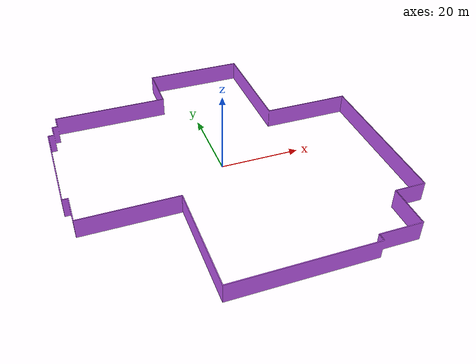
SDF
<?xml version="1.0" ?>
<sdf version="1.6">
  <model name="test_4_walls">
    <pose frame="">0 0 2.5 0 -0 0</pose>
    <static>1</static>
    <self_collide>0</self_collide>
    <allow_auto_disable>0</allow_auto_disable>
    <link name="mesh">
      <kinematic>0</kinematic>
      <gravity>1</gravity>
      <self_collide>0</self_collide>
      <collision name="collision">
        <geometry>
          <mesh>
            <uri>file:///home/agusmazzeo/Documents/UTN/Proyecto/Frontier-Exploration-with-a-prior/Notebooks/files/models/test_4_walls/meshes/xFHXbbfkVZ.stl</uri>
            <scale>1 1 1</scale>
          </mesh>
        </geometry>
        <pose frame="">-4.43285 -4.67384 -2.5 0 -0 0</pose>
        <max_contacts>20</max_contacts>
      </collision>
      <visual name="visual">
        <geometry>
          <mesh>
            <uri>file:///home/agusmazzeo/Documents/UTN/Proyecto/Frontier-Exploration-with-a-prior/Notebooks/files/models/test_4_walls/meshes/SndQtJqQZA.stl</uri>
            <scale>1 1 1</scale>
          </mesh>
        </geometry>
        <material>
          <ambient>0.788235 0.368627 0.984314 1</ambient>
          <diffuse>0.788235294117647 0.3686274509803922 0.984313725490196 1</diffuse>
        </material>
        <pose frame="">-4.43285 -4.67384 -2.5 0 -0 0</pose>
        <cast_shadows>1</cast_shadows>
        <transparency>0.0</transparency>
      </visual>
      <pose frame="">0 0 0 0 -0 0</pose>
    </link>
  </model>
</sdf>
